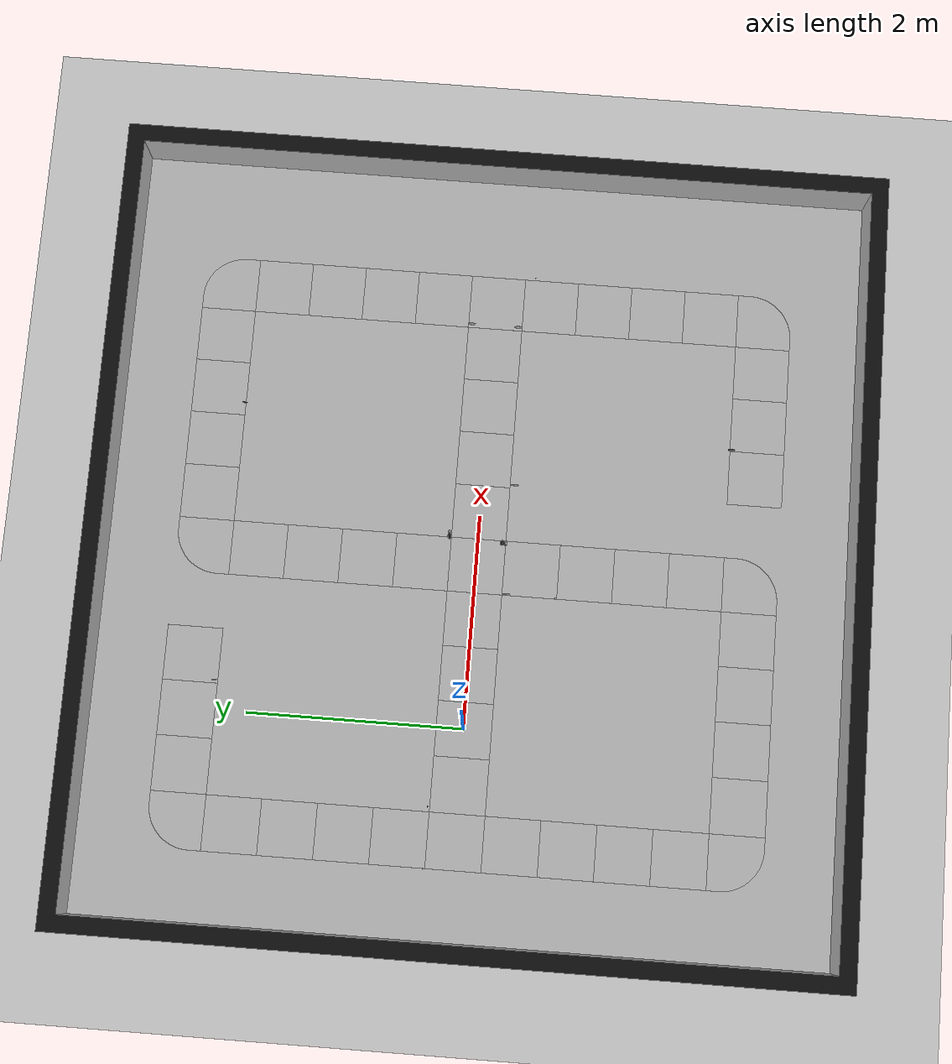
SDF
<?xml version="1.0"?>
<sdf version="1.6">
  <world name="puzzletrack_1">

    <plugin filename="gz-sim-physics-system" name="gz::sim::systems::Physics" />
    <plugin filename="gz-sim-user-commands-system" name="gz::sim::systems::UserCommands" />
    <plugin filename="gz-sim-scene-broadcaster-system" name="gz::sim::systems::SceneBroadcaster" />
    <plugin filename="gz-sim-sensors-system" name="gz::sim::systems::Sensors">
      <render_engine>ogre2</render_engine>
    </plugin>
    <plugin filename="gz-sim-imu-system" name="gz::sim::systems::Imu" />

    <include><uri>https://fuel.gazebosim.org/1.0/OpenRobotics/models/Ground Plane</uri></include>
    <include><uri>https://fuel.gazebosim.org/1.0/OpenRobotics/models/Sun</uri></include>

    <scene><shadows>false</shadows></scene>

    <gui fullscreen='0'>
      <camera name='user_camera'>
        <pose>0.319654 -0.235002 9.29441 0 1.5138 0.009599</pose>
        <view_controller>orbit</view_controller>
      </camera>
    </gui>

    <physics type="ode">
      <real_time_update_rate>1000.0</real_time_update_rate>
      <max_step_size>0.001</max_step_size>
      <real_time_factor>1</real_time_factor>
    </physics>

    <model name="puzzletrack">
      <include><name>piece_1</name><pose>0 0 0 0 0 0</pose><uri>model://puzzletrack_piece_1</uri></include>
      <include><name>piece_2</name><pose>0.51 0 0 0 0 0</pose><uri>model://puzzletrack_piece_1</uri></include>
      <include><name>piece_3</name><pose>1.02 0 0 0 0 0</pose><uri>model://puzzletrack_piece_1</uri></include>
      <include><name>piece_4</name><pose>1.53 0 0 0 0 0</pose><uri>model://puzzletrack_piece_2</uri></include>
      <include><name>piece_5</name><pose>2.04 0 0 0 0 0</pose><uri>model://puzzletrack_piece_1</uri></include>
      <include><name>piece_6</name><pose>2.55 0 0 0 0 0</pose><uri>model://puzzletrack_piece_1</uri></include>
      <include><name>piece_7</name><pose>3.06 0 0 0 0 0</pose><uri>model://puzzletrack_piece_1</uri></include>
      <include><name>piece_8</name><pose>3.57 0 0 0 0 0</pose><uri>model://puzzletrack_piece_1</uri></include>
      <include><name>piece_9</name><pose>4.08 0 0 0 0 -1.57</pose><uri>model://puzzletrack_piece_2</uri></include>

      <include><name>piece_10</name><pose>4.08 0.51 0 0 0 1.57</pose><uri>model://puzzletrack_piece_1</uri></include>
      <include><name>piece_11</name><pose>4.08 1.02 0 0 0 1.57</pose><uri>model://puzzletrack_piece_1</uri></include>
      <include><name>piece_12</name><pose>4.08 1.53 0 0 0 1.57</pose><uri>model://puzzletrack_piece_1</uri></include>
      <include><name>piece_13</name><pose>4.08 2.04 0 0 0 1.57</pose><uri>model://puzzletrack_piece_1</uri></include>
      <include><name>piece_14</name><pose>4.08 2.55 0 0 0 0</pose><uri>model://puzzletrack_piece_3</uri></include>

      <include><name>piece_15</name><pose>3.57 2.55 0 0 0 0</pose><uri>model://puzzletrack_piece_1</uri></include>
      <include><name>piece_16</name><pose>3.06 2.55 0 0 0 0</pose><uri>model://puzzletrack_piece_1</uri></include>
      <include><name>piece_17</name><pose>2.55 2.55 0 0 0 0</pose><uri>model://puzzletrack_piece_1</uri></include>
      <include><name>piece_18</name><pose>2.04 2.55 0 0 0 0</pose><uri>model://puzzletrack_piece_1</uri></include>
      <include><name>piece_19</name><pose>1.53 2.55 0 0 0 1.57</pose><uri>model://puzzletrack_piece_3</uri></include>
      <include><name>piece_20</name><pose>1.53 2.04 0 0 0 1.57</pose><uri>model://puzzletrack_piece_1</uri></include>
      <include><name>piece_21</name><pose>1.53 1.53 0 0 0 1.57</pose><uri>model://puzzletrack_piece_1</uri></include>
      <include><name>piece_22</name><pose>1.53 1.02 0 0 0 1.57</pose><uri>model://puzzletrack_piece_1</uri></include>
      <include><name>piece_23</name><pose>1.53 0.51 0 0 0 1.57</pose><uri>model://puzzletrack_piece_1</uri></include>

      <include><name>piece_24</name><pose>4.08 -0.51 0 0 0 1.57</pose><uri>model://puzzletrack_piece_1</uri></include>
      <include><name>piece_25</name><pose>4.08 -1.02 0 0 0 1.57</pose><uri>model://puzzletrack_piece_1</uri></include>
      <include><name>piece_26</name><pose>4.08 -1.53 0 0 0 1.57</pose><uri>model://puzzletrack_piece_1</uri></include>
      <include><name>piece_27</name><pose>4.08 -2.04 0 0 0 -1.57</pose><uri>model://puzzletrack_piece_1</uri></include>
      <include><name>piece_28</name><pose>4.08 -2.55 0 0 0 -1.57</pose><uri>model://puzzletrack_piece_3</uri></include>
      <include><name>piece_29</name><pose>2.55 -2.55 0 0 0 0</pose><uri>model://puzzletrack_piece_2</uri></include>
      <include><name>piece_30</name><pose>3.06 -2.55 0 0 0 0</pose><uri>model://puzzletrack_piece_1</uri></include>
      <include><name>piece_31</name><pose>3.57 -2.55 0 0 0 0</pose><uri>model://puzzletrack_piece_1</uri></include>

      <include><name>piece_32</name><pose>1.53 -0.51 0 0 0 1.57</pose><uri>model://puzzletrack_piece_1</uri></include>
      <include><name>piece_33</name><pose>1.53 -1.02 0 0 0 1.57</pose><uri>model://puzzletrack_piece_1</uri></include>
      <include><name>piece_34</name><pose>1.53 -1.53 0 0 0 1.57</pose><uri>model://puzzletrack_piece_1</uri></include>
      <include><name>piece_35</name><pose>1.53 -2.04 0 0 0 -1.57</pose><uri>model://puzzletrack_piece_1</uri></include>
      <include><name>piece_36</name><pose>1.53 -2.55 0 0 0 -1.57</pose><uri>model://puzzletrack_piece_3</uri></include>
      <include><name>piece_37</name><pose>1.02 -2.55 0 0 0 0</pose><uri>model://puzzletrack_piece_1</uri></include>
      <include><name>piece_38</name><pose>0.51 -2.55 0 0 0 0</pose><uri>model://puzzletrack_piece_1</uri></include>
      <include><name>piece_39</name><pose>0 -2.55 0 0 0 0</pose><uri>model://puzzletrack_piece_1</uri></include>
      <include><name>piece_40</name><pose>-0.51 -2.55 0 0 0 0</pose><uri>model://puzzletrack_piece_1</uri></include>

      <include><name>piece_41</name><pose>-1.02 -2.55 0 0 0 3.14159</pose><uri>model://puzzletrack_piece_3</uri></include>
      <include><name>piece_42</name><pose>-1.02 -0.51 0 0 0 1.57</pose><uri>model://puzzletrack_piece_1</uri></include>
      <include><name>piece_43</name><pose>-1.02 -1.02 0 0 0 1.57</pose><uri>model://puzzletrack_piece_1</uri></include>
      <include><name>piece_44</name><pose>-1.02 -1.53 0 0 0 1.57</pose><uri>model://puzzletrack_piece_1</uri></include>
      <include><name>piece_45</name><pose>-1.02 -2.04 0 0 0 -1.57</pose><uri>model://puzzletrack_piece_1</uri></include>
      <include><name>piece_46</name><pose>-1.02 0 0 0 0 0</pose><uri>model://puzzletrack_piece_2</uri></include>
      <include><name>piece_47</name><pose>-0.51 0 0 0 0 0</pose><uri>model://puzzletrack_piece_1</uri></include>
      <include><name>piece_48</name><pose>-1.02 0.51 0 0 0 -1.57</pose><uri>model://puzzletrack_piece_1</uri></include>
      <include><name>piece_49</name><pose>-1.02 1.02 0 0 0 -1.57</pose><uri>model://puzzletrack_piece_1</uri></include>
      <include><name>piece_50</name><pose>-1.02 1.53 0 0 0 -1.57</pose><uri>model://puzzletrack_piece_1</uri></include>
      <include><name>piece_51</name><pose>-1.02 2.04 0 0 0 -1.57</pose><uri>model://puzzletrack_piece_1</uri></include>
      <include><name>piece_52</name><pose>-1.02 2.55 0 0 0 1.57</pose><uri>model://puzzletrack_piece_3</uri></include>
      <include><name>piece_53</name><pose>-0.51 2.55 0 0 0 0</pose><uri>model://puzzletrack_piece_1</uri></include>
      <include><name>piece_54</name><pose>0 2.55 0 0 0 0</pose><uri>model://puzzletrack_piece_1</uri></include>
      <include><name>piece_55</name><pose>0.51 2.55 0 0 0 0</pose><uri>model://puzzletrack_piece_2</uri></include>
    </model>

    <model name="traffic_assets">
      <include><name>go_ahead</name><pose>1.275 -0.3 0.07 1.57 0 -1.57</pose><uri>model://go_ahead</uri></include>
      <include><name>go_ahead_2</name><pose>1.24 0.31 0.07 1.57 0 3.14159</pose><uri>model://go_ahead</uri></include>
      <include><name>max_speed</name><pose>2.31 -0.3 0.07 1.57 0 -1.57</pose><uri>model://max_speed</uri></include>
      <include><name>max_speed_2</name><pose>4.31 -0.35 0.07 1.57 0 0</pose><uri>model://max_speed</uri></include>
      <include><name>stop</name><pose>3.84 0.22 0.07 1.57 0 -1.57</pose><uri>model://stop</uri></include>
      <include><name>roadwork</name><pose>2.91 2.3 0.07 1.57 0 1.57</pose><uri>model://roadwork</uri></include>
      <include><name>roadwork_2</name><pose>1.30 -0.75 0.07 1.57 0 3.14159</pose><uri>model://roadwork</uri></include>
      <include><name>roundabout</name><pose>2.8 -2.30 0.07 1.57 0 1.57</pose><uri>model://roundabout</uri></include>
      <include><name>roundabout_2</name><pose>0.28 2.33 0.07 1.57 0 -1.57</pose><uri>model://roundabout</uri></include>
      <include><name>turn_right</name><pose>3.84 -0.22 0.07 1.57 0 -1.57</pose><uri>model://turn_right</uri></include>
      <include><name>turn_left</name><pose>-0.75 0.27 0.07 1.57 0 3.1415</pose><uri>model://turn_left</uri></include>
      <include><name>give_way</name><pose>-1.28 0.27 0.07 1.57 0 3.1415</pose><uri>model://give_way</uri></include>
      <include><name>traffic_light</name><pose>1.81 0.27 0.05 0 0 -1.57</pose><uri>model://traffic_light</uri></include>
      <include><name>traffic_light_2</name><pose>1.75 -0.255 0.05 0 0 3.14159</pose><uri>model://traffic_light</uri></include>
    </model>

    <light name='light_source_1' type='spot'>
      <pose>1.6 0.9 2.1 0 0 0</pose>
      <direction>0 0 -1</direction>
      <spot><inner_angle>0.6</inner_angle><outer_angle>3.0</outer_angle><falloff>1.0</falloff></spot>
    </light>

    <include>
      <name>border_box</name>
      <pose>1.68 -0.08 0.001 0 0 0</pose>
      <uri>model://border_box_v2</uri>
    </include>

    <plugin filename="traffic_light_plugin" name="TrafficLightPlugin">
      <traffic_light name="traffic_light"><red>10.0</red><green>7.0</green><yellow>3.0</yellow></traffic_light>
      <traffic_light name="traffic_light_2"><green>7.0</green><yellow>3.0</yellow><red>10.0</red></traffic_light>
    </plugin>

  </world>
</sdf>

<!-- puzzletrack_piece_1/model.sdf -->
<sdf version='1.4'>
    <model name="piece_1">
        <static>1</static>
        <link name="link_1">
            <visual name='visual'>
                <pose frame=''>0 0 0.0015 0 0 0</pose>
                <geometry>
                    <mesh>
                        <uri>model://puzzletrack_piece_1/meshes/piece_1.dae</uri>
                    </mesh>
                </geometry>
            </visual>
            <!-- This model does not include a collision definition because it is supposed to be
            used as ground-->
        </link>
    </model>
</sdf>

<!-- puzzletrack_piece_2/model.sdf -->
<sdf version='1.4'>
    <model name="piece_2">
        <static>1</static>
        <link name="link_1">
            <visual name='visual'>
                <pose frame=''>0 0 0.0015 0 0 0</pose>
                <geometry>
                    <mesh>
                        <uri>model://puzzletrack_piece_2/meshes/piece_2.dae</uri>
                    </mesh>
                </geometry>
            </visual>

        </link>
    </model>
</sdf>

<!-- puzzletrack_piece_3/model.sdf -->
<sdf version='1.4'>
    <model name="piece_3">
        <static>1</static>
        <link name="link_1">
            <visual name='visual'>
                <pose frame=''>0 0 0.0015 0 0 0</pose>
                <geometry>
                    <mesh>
                        <uri>model://puzzletrack_piece_3/meshes/piece_3.dae</uri>
                    </mesh>
                </geometry>
            </visual>
        </link>
    </model>
</sdf>

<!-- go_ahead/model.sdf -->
<sdf version='1.4'>
    <model name="go_ahead">
        <static>1</static>
        <link name="link_1">
            <visual name='visual'>
                <pose frame=''>0 0 0 0 0 0</pose>
                <geometry>
                    <mesh>
                        <uri>model://go_ahead/meshes/go_ahead.dae</uri>
                    </mesh>
                </geometry>
            </visual>
        </link>
    </model>

</sdf>

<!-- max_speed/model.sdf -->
<sdf version='1.4'>
    <model name="max_speed">
        <static>1</static>
        <link name="link_1">
            <visual name='visual'>
                <pose frame=''>0 0 0 0 0 0</pose>
                <geometry>
                    <mesh>
                        <uri>model://max_speed/meshes/max_speed.dae</uri>
                    </mesh>
                </geometry>
            </visual>
        </link>
    </model>
</sdf>

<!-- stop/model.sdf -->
<sdf version='1.4'>
    <model name="stop">
        <static>1</static>
        <link name="link_1">
            <visual name='visual'>
                <pose frame=''>0 0 0 0 0 0</pose>
                <geometry>
                    <mesh>
                        <uri>model://stop/meshes/stop.dae</uri>
                    </mesh>
                </geometry>
            </visual>
        </link>
    </model>
</sdf>

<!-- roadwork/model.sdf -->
<sdf version='1.4'>
    <model name="roadwork">
        <static>1</static>
        <link name="link_1">
            <visual name='visual'>
                <pose frame=''>0 0 0 0 0 0</pose>
                <geometry>
                    <mesh>
                        <uri>model://roadwork/meshes/roadwork.dae</uri>
                    </mesh>
                </geometry>
            </visual>
        </link>
    </model>
</sdf>

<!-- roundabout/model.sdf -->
<sdf version='1.4'>
    <model name="roundabout">
        <static>1</static>
        <link name="link_1">
            <visual name='visual'>
                <pose frame=''>0 0 0 0 0 0</pose>
                <geometry>
                    <mesh>
                        <uri>model://roundabout/meshes/roundabout.dae</uri>
                    </mesh>
                </geometry>
            </visual>
        </link>
    </model>
</sdf>

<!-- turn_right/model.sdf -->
<sdf version='1.4'>
    <model name="turn_right">
        <static>1</static>
        <link name="link_1">
            <visual name='visual'>
                <pose frame=''>0 0 0 0 0 0</pose>
                <geometry>
                    <mesh>
                        <uri>model://turn_right/meshes/turn_right.dae</uri>
                    </mesh>
                </geometry>
            </visual>
        </link>
    </model>
</sdf>

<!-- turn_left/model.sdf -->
<sdf version='1.4'>
    <model name="turn_left">
        <static>1</static>
        <link name="link_1">
            <visual name='visual'>
                <pose frame=''>0 0 0 0 0 0</pose>
                <geometry>
                    <mesh>
                        <uri>model://turn_left/meshes/turn_left.dae</uri>
                    </mesh>
                </geometry>
            </visual>
        </link>
    </model>
</sdf>

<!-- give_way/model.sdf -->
<sdf version='1.4'>
    <model name="give_way">
        <static>1</static>
        <link name="link_1">
            <visual name='visual'>
                <pose frame=''>0 0 0 0 0 0</pose>
                <geometry>
                    <mesh>
                        <uri>model://give_way/meshes/give_way.dae</uri>
                    </mesh>
                </geometry>
            </visual>
        </link>
    </model>
</sdf>

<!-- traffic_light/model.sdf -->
<sdf version='1.6'>
    <model name="traffic_light">
        <static>1</static>

        <link name="body_link">
            <visual name="body_mesh">
                <pose>0 0 0 0 0 0</pose>
                <geometry>
                    <mesh>
                        <uri>model://traffic_light/meshes/traffic_light.dae</uri>
                        <scale>1.5 1.5 1.5</scale>
                    </mesh>
                </geometry>
            </visual>
        </link>

        <link name="red_led">
            <pose>-0.001 -0.035 0.055 1.57 0.0 0.0</pose>
            <light name='light' type='spot'>
                <pose>0 0 0 0 0 0</pose>
                <attenuation>
                    <range>4.0</range>
                    <constant>0.3</constant>
                    <linear>0.01</linear>
                    <quadratic>5.0</quadratic>
                </attenuation>
                <diffuse>1 0 0 1</diffuse>
                <specular>1 0 0 1</specular>
                <direction>0 -11.0 -1.0</direction>
                <spot>
                    <inner_angle>0.8</inner_angle>
                    <outer_angle>2.0</outer_angle>
                    <falloff>1.0</falloff>
                </spot>
                <cast_shadows>false</cast_shadows>
            </light>
            <visual name="visual">
                <geometry>
                    <cylinder>
                        <radius>0.01415</radius>
                        <length>0.0005</length>
                    </cylinder>
                </geometry>
                <material>
                    <ambient>0.15 0 0 1</ambient>
                    <emissive>1 0 0 1</emissive>
                </material>
            </visual>
        </link>

        <link name="yellow_led">
            <pose>-0.001 -0.035 0.028 1.57 0.0 0.0</pose>
            <light name='light' type='spot'>
                <pose>0 0 0 0 0 0</pose>
                <attenuation>
                    <range>4.0</range>
                    <constant>0.3</constant>
                    <linear>0.01</linear>
                    <quadratic>5.0</quadratic>
                </attenuation>
                <diffuse>1 1 0 1</diffuse>
                <specular>1 1 0 1</specular>
                <direction>0 -11.0 -1.0</direction>
                <spot>
                    <inner_angle>0.8</inner_angle>
                    <outer_angle>2.0</outer_angle>
                    <falloff>1.0</falloff>
                </spot>
                <cast_shadows>false</cast_shadows>
            </light>
            <visual name="visual">
                <geometry>
                    <cylinder>
                        <radius>0.01415</radius>
                        <length>0.0005</length>
                    </cylinder>
                </geometry>
                <material>
                    <ambient>0.15 0.15 0 1</ambient>
                    <emissive>1 1 0 1</emissive>
                </material>
            </visual>
        </link>

        <link name="green_led">
            <pose>-0.001 -0.035 -0.001 1.57 0.0 0.0</pose>
            <light name='light' type='spot'>
                <pose>0 0 0 0 0 0</pose>
                <attenuation>
                    <range>4.0</range>
                    <constant>0.3</constant>
                    <linear>0.01</linear>
                    <quadratic>5.0</quadratic>
                </attenuation>
                <diffuse>0 1 0 1</diffuse>
                <specular>0 1 0 1</specular>
                <direction>0 -11.0 -1.0</direction>
                <spot>
                    <inner_angle>0.8</inner_angle>
                    <outer_angle>2.0</outer_angle>
                    <falloff>1.0</falloff>
                </spot>
                <cast_shadows>false</cast_shadows>
            </light>
            <visual name="visual">
                <geometry>
                    <cylinder>
                        <radius>0.01415</radius>
                        <length>0.0005</length>
                    </cylinder>
                </geometry>
                <material>
                    <ambient>0 0.15 0 1</ambient>
                    <emissive>0 1 0 1</emissive>
                </material>
            </visual>
        </link>

        <joint name="joint_1" type="fixed">
            <parent>body_link</parent>
            <child>green_led</child>
        </joint>
        <joint name="joint_2" type="fixed">
            <parent>body_link</parent>
            <child>yellow_led</child>
        </joint>
        <joint name="joint_3" type="fixed">
            <parent>body_link</parent>
            <child>red_led</child>
        </joint>

    </model>
</sdf>

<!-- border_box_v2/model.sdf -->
<sdf version='1.4'>
    <model name="border_box_v2">
        <static>1</static>
        <link name="link_1">
            <visual name='visual'>
                <pose frame=''>0 0 0 0 0 0</pose>
                <geometry>
                    <mesh>
                        <uri>model://border_box_v2/meshes/border_box.dae</uri>
                        <scale>1.6 1.6 1</scale>
                    </mesh>
                </geometry>
            </visual>

            <collision name="collision_1">
                <pose frame=''>0 -3.48 0.225 0 0 0</pose>
                <geometry>
                    <box>
                        <size>7.2 0.16 0.45</size>
                    </box>
                </geometry>
            </collision>

            <collision name="collision_2">
                <pose frame=''>0 3.552 0.225 0 0 0</pose>
                <geometry>
                    <box>
                        <size>7.2 0.16 0.45</size>
                    </box>
                </geometry>
            </collision>

            <collision name="collision_3">
                <pose frame=''>-3.64 0 0.225 0 0 0</pose>
                <geometry>
                    <box>
                        <size>0.16 7.2 0.45</size>
                    </box>
                </geometry>
            </collision>

            <collision name="collision_4">
                <pose frame=''>3.552 0 0.225 0 0 0</pose>
                <geometry>
                    <box>
                        <size>0.16 7.2 0.45</size>
                    </box>
                </geometry>
            </collision>
        </link>
    </model>
</sdf>
